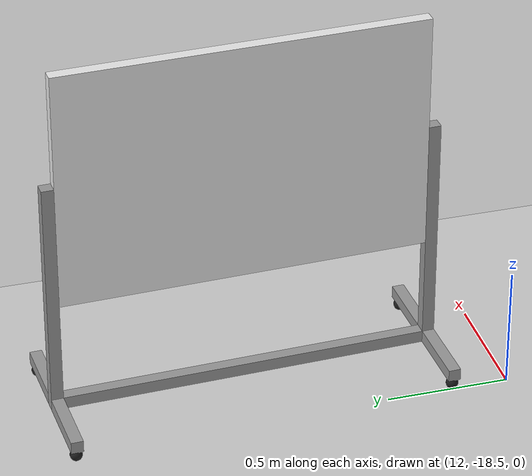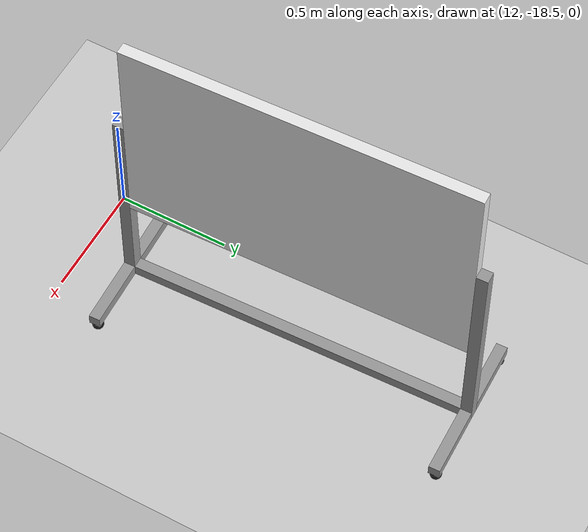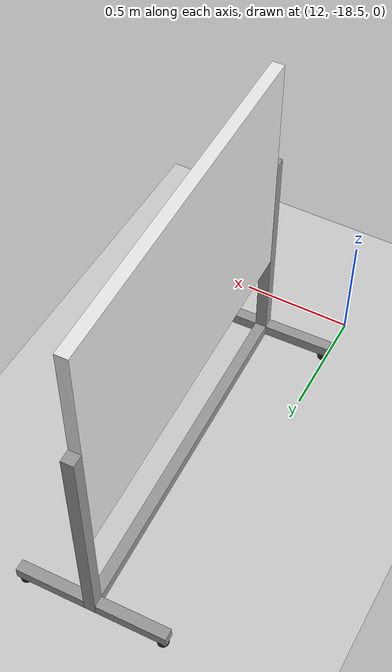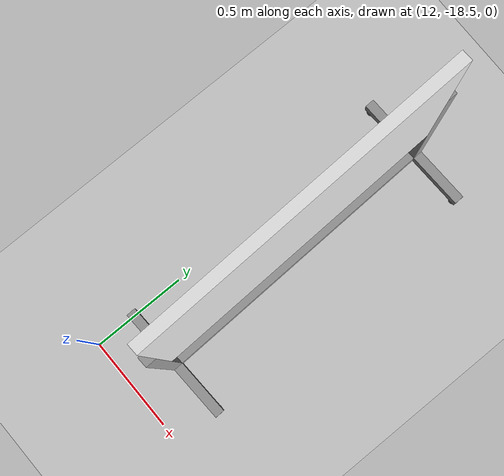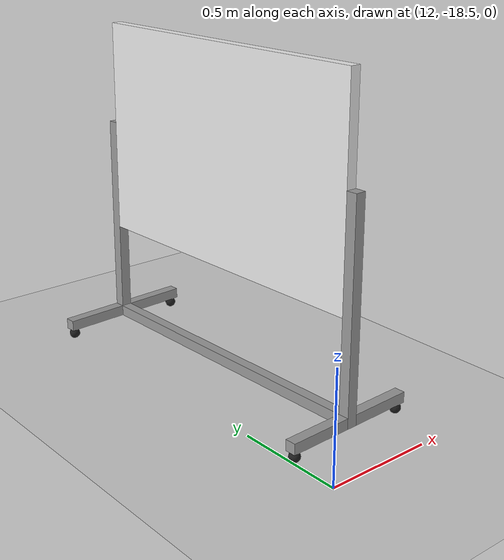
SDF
<sdf version="1.6">
 <world name="default">
  <model name="ground_plane">
   <static>1</static>
   <link name="link">
    <collision name="collision">
     <geometry><plane><normal>0 0 1</normal><size>100 100</size></plane></geometry>
     <surface><friction><ode><mu>100</mu><mu2>50</mu2></ode></friction></surface>
    </collision>
    <visual name="visual">
     <cast_shadows>0</cast_shadows>
     <geometry><plane><normal>0 0 1</normal><size>100 100</size></plane></geometry>
     <material>
      <script><uri>file://media/materials/scripts/gazebo.material</uri><name>Gazebo/Grey</name></script>
     </material>
    </visual>
   </link>
  </model>
  <model name="whiteboard_clone_clone_0">
   <link name="link_0">
    <pose>0 0 1.09583 0 -0 0</pose>
    <inertial>
     <mass>1</mass>
     <inertia>
      <ixx>0.166667</ixx>
      <ixy>0</ixy>
      <ixz>0</ixz>
      <iyy>0.166667</iyy>
      <iyz>0</iyz>
      <izz>0.166667</izz>
     </inertia>
    </inertial>
    <visual name="visual">
     <geometry><box><size>0.05 1.5 1</size></box></geometry>
     <material>
      <lighting>1</lighting>
      <script><uri>file://media/materials/scripts/gazebo.material</uri><name>Gazebo/White</name></script>
      <shader type="vertex"><normal_map>__default__</normal_map></shader>
     </material>
    </visual>
    <collision name="collision">
     <geometry><box><size>0.05 1.5 1</size></box></geometry>
     <surface>
      <friction>
       <ode><mu>1</mu><mu2>1</mu2><fdir1>0 0 0</fdir1><slip1>0</slip1><slip2>0</slip2></ode>
       <torsional>
        <coefficient>1</coefficient>
        <patch_radius>0</patch_radius>
        <surface_radius>0</surface_radius>
        <use_patch_radius>1</use_patch_radius>
        <ode><slip>0</slip></ode>
       </torsional>
      </friction>
      <bounce><restitution_coefficient>0</restitution_coefficient><threshold>1e+06</threshold></bounce>
      <contact>
       <collide_without_contact>0</collide_without_contact>
       <collide_without_contact_bitmask>1</collide_without_contact_bitmask>
       <collide_bitmask>1</collide_bitmask>
       <ode>
        <soft_cfm>0</soft_cfm>
        <soft_erp>0.2</soft_erp>
        <kp>1e+13</kp>
        <kd>1</kd>
        <max_vel>0.01</max_vel>
        <min_depth>0</min_depth>
       </ode>
       <bullet>
        <split_impulse>1</split_impulse>
        <split_impulse_penetration_threshold>-0.01</split_impulse_penetration_threshold>
        <soft_cfm>0</soft_cfm>
        <soft_erp>0.2</soft_erp>
        <kp>1e+13</kp>
        <kd>1</kd>
       </bullet>
      </contact>
     </surface>
    </collision>
   </link>
   <link name="link_1">
    <pose>0 0 0.145833 0 -0 0</pose>
    <inertial>
     <mass>1</mass>
     <inertia>
      <ixx>0.166667</ixx>
      <ixy>0</ixy>
      <ixz>0</ixz>
      <iyy>0.166667</iyy>
      <iyz>0</iyz>
      <izz>0.166667</izz>
     </inertia>
    </inertial>
    <visual name="visual">
     <geometry><box><size>0.05 1.5 0.05</size></box></geometry>
     <material>
      <lighting>1</lighting>
      <script><uri>file://media/materials/scripts/gazebo.material</uri><name>Gazebo/Grey</name></script>
      <ambient>0.3 0.3 0.3 1</ambient>
      <diffuse>0.7 0.7 0.7 1</diffuse>
      <specular>0.01 0.01 0.01 1</specular>
      <emissive>0 0 0 1</emissive>
      <shader type="vertex"><normal_map>__default__</normal_map></shader>
     </material>
    </visual>
    <collision name="collision">
     <geometry><box><size>0.05 1.5 0.05</size></box></geometry>
     <surface>
      <friction>
       <ode><mu>1</mu><mu2>1</mu2><fdir1>0 0 0</fdir1><slip1>0</slip1><slip2>0</slip2></ode>
       <torsional>
        <coefficient>1</coefficient>
        <patch_radius>0</patch_radius>
        <surface_radius>0</surface_radius>
        <use_patch_radius>1</use_patch_radius>
        <ode><slip>0</slip></ode>
       </torsional>
      </friction>
      <bounce><restitution_coefficient>0</restitution_coefficient><threshold>1e+06</threshold></bounce>
      <contact>
       <collide_without_contact>0</collide_without_contact>
       <collide_without_contact_bitmask>1</collide_without_contact_bitmask>
       <collide_bitmask>1</collide_bitmask>
       <ode>
        <soft_cfm>0</soft_cfm>
        <soft_erp>0.2</soft_erp>
        <kp>1e+13</kp>
        <kd>1</kd>
        <max_vel>0.01</max_vel>
        <min_depth>0</min_depth>
       </ode>
       <bullet>
        <split_impulse>1</split_impulse>
        <split_impulse_penetration_threshold>-0.01</split_impulse_penetration_threshold>
        <soft_cfm>0</soft_cfm>
        <soft_erp>0.2</soft_erp>
        <kp>1e+13</kp>
        <kd>1</kd>
       </bullet>
      </contact>
     </surface>
    </collision>
   </link>
   <link name="link_2">
    <pose>-0.175 -0.775 0.145833 0 -0 0</pose>
    <inertial>
     <mass>1</mass>
     <inertia>
      <ixx>0.166667</ixx>
      <ixy>0</ixy>
      <ixz>0</ixz>
      <iyy>0.166667</iyy>
      <iyz>0</iyz>
      <izz>0.166667</izz>
     </inertia>
    </inertial>
    <visual name="visual">
     <geometry><box><size>0.3 0.05 0.05</size></box></geometry>
     <material>
      <lighting>1</lighting>
      <script><uri>file://media/materials/scripts/gazebo.material</uri><name>Gazebo/Grey</name></script>
      <ambient>0.3 0.3 0.3 1</ambient>
      <diffuse>0.7 0.7 0.7 1</diffuse>
      <specular>0.01 0.01 0.01 1</specular>
      <emissive>0 0 0 1</emissive>
      <shader type="vertex"><normal_map>__default__</normal_map></shader>
     </material>
    </visual>
    <collision name="collision">
     <geometry><box><size>0.3 0.05 0.05</size></box></geometry>
     <surface>
      <friction>
       <ode><mu>1</mu><mu2>1</mu2><fdir1>0 0 0</fdir1><slip1>0</slip1><slip2>0</slip2></ode>
       <torsional>
        <coefficient>1</coefficient>
        <patch_radius>0</patch_radius>
        <surface_radius>0</surface_radius>
        <use_patch_radius>1</use_patch_radius>
        <ode><slip>0</slip></ode>
       </torsional>
      </friction>
      <bounce><restitution_coefficient>0</restitution_coefficient><threshold>1e+06</threshold></bounce>
      <contact>
       <collide_without_contact>0</collide_without_contact>
       <collide_without_contact_bitmask>1</collide_without_contact_bitmask>
       <collide_bitmask>1</collide_bitmask>
       <ode>
        <soft_cfm>0</soft_cfm>
        <soft_erp>0.2</soft_erp>
        <kp>1e+13</kp>
        <kd>1</kd>
        <max_vel>0.01</max_vel>
        <min_depth>0</min_depth>
       </ode>
       <bullet>
        <split_impulse>1</split_impulse>
        <split_impulse_penetration_threshold>-0.01</split_impulse_penetration_threshold>
        <soft_cfm>0</soft_cfm>
        <soft_erp>0.2</soft_erp>
        <kp>1e+13</kp>
        <kd>1</kd>
       </bullet>
      </contact>
     </surface>
    </collision>
   </link>
   <link name="link_2_clone">
    <pose>0.175 0.775 0.145833 0 -0 0</pose>
    <inertial>
     <mass>1</mass>
     <inertia>
      <ixx>0.166667</ixx>
      <ixy>0</ixy>
      <ixz>0</ixz>
      <iyy>0.166667</iyy>
      <iyz>0</iyz>
      <izz>0.166667</izz>
     </inertia>
    </inertial>
    <visual name="visual">
     <geometry><box><size>0.3 0.05 0.05</size></box></geometry>
     <material>
      <lighting>1</lighting>
      <script><uri>file://media/materials/scripts/gazebo.material</uri><name>Gazebo/Grey</name></script>
      <ambient>0.3 0.3 0.3 1</ambient>
      <diffuse>0.7 0.7 0.7 1</diffuse>
      <specular>0.01 0.01 0.01 1</specular>
      <emissive>0 0 0 1</emissive>
      <shader type="vertex"><normal_map>__default__</normal_map></shader>
     </material>
    </visual>
    <collision name="collision">
     <geometry><box><size>0.3 0.05 0.05</size></box></geometry>
     <surface>
      <friction>
       <ode><mu>1</mu><mu2>1</mu2><fdir1>0 0 0</fdir1><slip1>0</slip1><slip2>0</slip2></ode>
       <torsional>
        <coefficient>1</coefficient>
        <patch_radius>0</patch_radius>
        <surface_radius>0</surface_radius>
        <use_patch_radius>1</use_patch_radius>
        <ode><slip>0</slip></ode>
       </torsional>
      </friction>
      <bounce><restitution_coefficient>0</restitution_coefficient><threshold>1e+06</threshold></bounce>
      <contact>
       <collide_without_contact>0</collide_without_contact>
       <collide_without_contact_bitmask>1</collide_without_contact_bitmask>
       <collide_bitmask>1</collide_bitmask>
       <ode>
        <soft_cfm>0</soft_cfm>
        <soft_erp>0.2</soft_erp>
        <kp>1e+13</kp>
        <kd>1</kd>
        <max_vel>0.01</max_vel>
        <min_depth>0</min_depth>
       </ode>
       <bullet>
        <split_impulse>1</split_impulse>
        <split_impulse_penetration_threshold>-0.01</split_impulse_penetration_threshold>
        <soft_cfm>0</soft_cfm>
        <soft_erp>0.2</soft_erp>
        <kp>1e+13</kp>
        <kd>1</kd>
       </bullet>
      </contact>
     </surface>
    </collision>
   </link>
   <link name="link_2_clone_clone">
    <pose>0.175 -0.775 0.145833 0 -0 0</pose>
    <inertial>
     <mass>1</mass>
     <inertia>
      <ixx>0.166667</ixx>
      <ixy>0</ixy>
      <ixz>0</ixz>
      <iyy>0.166667</iyy>
      <iyz>0</iyz>
      <izz>0.166667</izz>
     </inertia>
    </inertial>
    <visual name="visual">
     <geometry><box><size>0.3 0.05 0.05</size></box></geometry>
     <material>
      <lighting>1</lighting>
      <script><uri>file://media/materials/scripts/gazebo.material</uri><name>Gazebo/Grey</name></script>
      <ambient>0.3 0.3 0.3 1</ambient>
      <diffuse>0.7 0.7 0.7 1</diffuse>
      <specular>0.01 0.01 0.01 1</specular>
      <emissive>0 0 0 1</emissive>
      <shader type="vertex"><normal_map>__default__</normal_map></shader>
     </material>
    </visual>
    <collision name="collision">
     <geometry><box><size>0.3 0.05 0.05</size></box></geometry>
     <surface>
      <friction>
       <ode><mu>1</mu><mu2>1</mu2><fdir1>0 0 0</fdir1><slip1>0</slip1><slip2>0</slip2></ode>
       <torsional>
        <coefficient>1</coefficient>
        <patch_radius>0</patch_radius>
        <surface_radius>0</surface_radius>
        <use_patch_radius>1</use_patch_radius>
        <ode><slip>0</slip></ode>
       </torsional>
      </friction>
      <bounce><restitution_coefficient>0</restitution_coefficient><threshold>1e+06</threshold></bounce>
      <contact>
       <collide_without_contact>0</collide_without_contact>
       <collide_without_contact_bitmask>1</collide_without_contact_bitmask>
       <collide_bitmask>1</collide_bitmask>
       <ode>
        <soft_cfm>0</soft_cfm>
        <soft_erp>0.2</soft_erp>
        <kp>1e+13</kp>
        <kd>1</kd>
        <max_vel>0.01</max_vel>
        <min_depth>0</min_depth>
       </ode>
       <bullet>
        <split_impulse>1</split_impulse>
        <split_impulse_penetration_threshold>-0.01</split_impulse_penetration_threshold>
        <soft_cfm>0</soft_cfm>
        <soft_erp>0.2</soft_erp>
        <kp>1e+13</kp>
        <kd>1</kd>
       </bullet>
      </contact>
     </surface>
    </collision>
   </link>
   <link name="link_2_clone_clone_clone">
    <pose>-0.175 0.775 0.145833 0 -0 0</pose>
    <inertial>
     <mass>1</mass>
     <inertia>
      <ixx>0.166667</ixx>
      <ixy>0</ixy>
      <ixz>0</ixz>
      <iyy>0.166667</iyy>
      <iyz>0</iyz>
      <izz>0.166667</izz>
     </inertia>
    </inertial>
    <visual name="visual">
     <geometry><box><size>0.3 0.05 0.05</size></box></geometry>
     <material>
      <lighting>1</lighting>
      <script><uri>file://media/materials/scripts/gazebo.material</uri><name>Gazebo/Grey</name></script>
      <ambient>0.3 0.3 0.3 1</ambient>
      <diffuse>0.7 0.7 0.7 1</diffuse>
      <specular>0.01 0.01 0.01 1</specular>
      <emissive>0 0 0 1</emissive>
      <shader type="vertex"><normal_map>__default__</normal_map></shader>
     </material>
    </visual>
    <collision name="collision">
     <geometry><box><size>0.3 0.05 0.05</size></box></geometry>
     <surface>
      <friction>
       <ode><mu>1</mu><mu2>1</mu2><fdir1>0 0 0</fdir1><slip1>0</slip1><slip2>0</slip2></ode>
       <torsional>
        <coefficient>1</coefficient>
        <patch_radius>0</patch_radius>
        <surface_radius>0</surface_radius>
        <use_patch_radius>1</use_patch_radius>
        <ode><slip>0</slip></ode>
       </torsional>
      </friction>
      <bounce><restitution_coefficient>0</restitution_coefficient><threshold>1e+06</threshold></bounce>
      <contact>
       <collide_without_contact>0</collide_without_contact>
       <collide_without_contact_bitmask>1</collide_without_contact_bitmask>
       <collide_bitmask>1</collide_bitmask>
       <ode>
        <soft_cfm>0</soft_cfm>
        <soft_erp>0.2</soft_erp>
        <kp>1e+13</kp>
        <kd>1</kd>
        <max_vel>0.01</max_vel>
        <min_depth>0</min_depth>
       </ode>
       <bullet>
        <split_impulse>1</split_impulse>
        <split_impulse_penetration_threshold>-0.01</split_impulse_penetration_threshold>
        <soft_cfm>0</soft_cfm>
        <soft_erp>0.2</soft_erp>
        <kp>1e+13</kp>
        <kd>1</kd>
       </bullet>
      </contact>
     </surface>
    </collision>
   </link>
   <link name="link_3">
    <pose>0 -0.775 0.620833 0 -0 0</pose>
    <inertial>
     <mass>1</mass>
     <inertia>
      <ixx>0.166667</ixx>
      <ixy>0</ixy>
      <ixz>0</ixz>
      <iyy>0.166667</iyy>
      <iyz>0</iyz>
      <izz>0.166667</izz>
     </inertia>
    </inertial>
    <visual name="visual">
     <geometry><box><size>0.05 0.05 1</size></box></geometry>
     <material>
      <lighting>1</lighting>
      <script><uri>file://media/materials/scripts/gazebo.material</uri><name>Gazebo/Grey</name></script>
      <ambient>0.3 0.3 0.3 1</ambient>
      <diffuse>0.7 0.7 0.7 1</diffuse>
      <specular>0.01 0.01 0.01 1</specular>
      <emissive>0 0 0 1</emissive>
      <shader type="vertex"><normal_map>__default__</normal_map></shader>
     </material>
    </visual>
    <collision name="collision">
     <geometry><box><size>0.05 0.05 1</size></box></geometry>
     <surface>
      <friction>
       <ode><mu>1</mu><mu2>1</mu2><fdir1>0 0 0</fdir1><slip1>0</slip1><slip2>0</slip2></ode>
       <torsional>
        <coefficient>1</coefficient>
        <patch_radius>0</patch_radius>
        <surface_radius>0</surface_radius>
        <use_patch_radius>1</use_patch_radius>
        <ode><slip>0</slip></ode>
       </torsional>
      </friction>
      <bounce><restitution_coefficient>0</restitution_coefficient><threshold>1e+06</threshold></bounce>
      <contact>
       <collide_without_contact>0</collide_without_contact>
       <collide_without_contact_bitmask>1</collide_without_contact_bitmask>
       <collide_bitmask>1</collide_bitmask>
       <ode>
        <soft_cfm>0</soft_cfm>
        <soft_erp>0.2</soft_erp>
        <kp>1e+13</kp>
        <kd>1</kd>
        <max_vel>0.01</max_vel>
        <min_depth>0</min_depth>
       </ode>
       <bullet>
        <split_impulse>1</split_impulse>
        <split_impulse_penetration_threshold>-0.01</split_impulse_penetration_threshold>
        <soft_cfm>0</soft_cfm>
        <soft_erp>0.2</soft_erp>
        <kp>1e+13</kp>
        <kd>1</kd>
       </bullet>
      </contact>
     </surface>
    </collision>
   </link>
   <link name="link_3_clone">
    <pose>0 0.775 0.620833 0 -0 0</pose>
    <inertial>
     <mass>1</mass>
     <inertia>
      <ixx>0.166667</ixx>
      <ixy>0</ixy>
      <ixz>0</ixz>
      <iyy>0.166667</iyy>
      <iyz>0</iyz>
      <izz>0.166667</izz>
     </inertia>
    </inertial>
    <visual name="visual">
     <geometry><box><size>0.05 0.05 1</size></box></geometry>
     <material>
      <lighting>1</lighting>
      <script><uri>file://media/materials/scripts/gazebo.material</uri><name>Gazebo/Grey</name></script>
      <ambient>0.3 0.3 0.3 1</ambient>
      <diffuse>0.7 0.7 0.7 1</diffuse>
      <specular>0.01 0.01 0.01 1</specular>
      <emissive>0 0 0 1</emissive>
      <shader type="vertex"><normal_map>__default__</normal_map></shader>
     </material>
    </visual>
    <collision name="collision">
     <geometry><box><size>0.05 0.05 1</size></box></geometry>
     <surface>
      <friction>
       <ode><mu>1</mu><mu2>1</mu2><fdir1>0 0 0</fdir1><slip1>0</slip1><slip2>0</slip2></ode>
       <torsional>
        <coefficient>1</coefficient>
        <patch_radius>0</patch_radius>
        <surface_radius>0</surface_radius>
        <use_patch_radius>1</use_patch_radius>
        <ode><slip>0</slip></ode>
       </torsional>
      </friction>
      <bounce><restitution_coefficient>0</restitution_coefficient><threshold>1e+06</threshold></bounce>
      <contact>
       <collide_without_contact>0</collide_without_contact>
       <collide_without_contact_bitmask>1</collide_without_contact_bitmask>
       <collide_bitmask>1</collide_bitmask>
       <ode>
        <soft_cfm>0</soft_cfm>
        <soft_erp>0.2</soft_erp>
        <kp>1e+13</kp>
        <kd>1</kd>
        <max_vel>0.01</max_vel>
        <min_depth>0</min_depth>
       </ode>
       <bullet>
        <split_impulse>1</split_impulse>
        <split_impulse_penetration_threshold>-0.01</split_impulse_penetration_threshold>
        <soft_cfm>0</soft_cfm>
        <soft_erp>0.2</soft_erp>
        <kp>1e+13</kp>
        <kd>1</kd>
       </bullet>
      </contact>
     </surface>
    </collision>
   </link>
   <link name="link_4">
    <pose>-0.3 -0.775 0.095833 0 -0 0</pose>
    <inertial>
     <mass>1</mass>
     <inertia><ixx>0.1</ixx><ixy>0</ixy><ixz>0</ixz><iyy>0.1</iyy><iyz>0</iyz><izz>0.1</izz></inertia>
    </inertial>
    <visual name="visual">
     <geometry><sphere><radius>0.025</radius></sphere></geometry>
     <material>
      <lighting>1</lighting>
      <script><uri>file://media/materials/scripts/gazebo.material</uri><name>Gazebo/Black</name></script>
      <shader type="vertex"><normal_map>__default__</normal_map></shader>
     </material>
    </visual>
    <collision name="collision">
     <geometry><sphere><radius>0.025</radius></sphere></geometry>
     <surface>
      <friction>
       <ode><mu>1</mu><mu2>1</mu2><fdir1>0 0 0</fdir1><slip1>0</slip1><slip2>0</slip2></ode>
       <torsional>
        <coefficient>1</coefficient>
        <patch_radius>0</patch_radius>
        <surface_radius>0</surface_radius>
        <use_patch_radius>1</use_patch_radius>
        <ode><slip>0</slip></ode>
       </torsional>
      </friction>
      <bounce><restitution_coefficient>0</restitution_coefficient><threshold>1e+06</threshold></bounce>
      <contact>
       <collide_without_contact>0</collide_without_contact>
       <collide_without_contact_bitmask>1</collide_without_contact_bitmask>
       <collide_bitmask>1</collide_bitmask>
       <ode>
        <soft_cfm>0</soft_cfm>
        <soft_erp>0.2</soft_erp>
        <kp>1e+13</kp>
        <kd>1</kd>
        <max_vel>0.01</max_vel>
        <min_depth>0</min_depth>
       </ode>
       <bullet>
        <split_impulse>1</split_impulse>
        <split_impulse_penetration_threshold>-0.01</split_impulse_penetration_threshold>
        <soft_cfm>0</soft_cfm>
        <soft_erp>0.2</soft_erp>
        <kp>1e+13</kp>
        <kd>1</kd>
       </bullet>
      </contact>
     </surface>
    </collision>
   </link>
   <link name="link_4_clone">
    <pose>0.3 0.775 0.095833 0 -0 0</pose>
    <inertial>
     <mass>1</mass>
     <inertia><ixx>0.1</ixx><ixy>0</ixy><ixz>0</ixz><iyy>0.1</iyy><iyz>0</iyz><izz>0.1</izz></inertia>
    </inertial>
    <visual name="visual">
     <geometry><sphere><radius>0.025</radius></sphere></geometry>
     <material>
      <lighting>1</lighting>
      <script><uri>file://media/materials/scripts/gazebo.material</uri><name>Gazebo/Black</name></script>
      <shader type="vertex"><normal_map>__default__</normal_map></shader>
     </material>
    </visual>
    <collision name="collision">
     <geometry><sphere><radius>0.025</radius></sphere></geometry>
     <surface>
      <friction>
       <ode><mu>1</mu><mu2>1</mu2><fdir1>0 0 0</fdir1><slip1>0</slip1><slip2>0</slip2></ode>
       <torsional>
        <coefficient>1</coefficient>
        <patch_radius>0</patch_radius>
        <surface_radius>0</surface_radius>
        <use_patch_radius>1</use_patch_radius>
        <ode><slip>0</slip></ode>
       </torsional>
      </friction>
      <bounce><restitution_coefficient>0</restitution_coefficient><threshold>1e+06</threshold></bounce>
      <contact>
       <collide_without_contact>0</collide_without_contact>
       <collide_without_contact_bitmask>1</collide_without_contact_bitmask>
       <collide_bitmask>1</collide_bitmask>
       <ode>
        <soft_cfm>0</soft_cfm>
        <soft_erp>0.2</soft_erp>
        <kp>1e+13</kp>
        <kd>1</kd>
        <max_vel>0.01</max_vel>
        <min_depth>0</min_depth>
       </ode>
       <bullet>
        <split_impulse>1</split_impulse>
        <split_impulse_penetration_threshold>-0.01</split_impulse_penetration_threshold>
        <soft_cfm>0</soft_cfm>
        <soft_erp>0.2</soft_erp>
        <kp>1e+13</kp>
        <kd>1</kd>
       </bullet>
      </contact>
     </surface>
    </collision>
   </link>
   <link name="link_4_clone_clone">
    <pose>-0.3 0.775 0.095833 0 -0 0</pose>
    <inertial>
     <mass>1</mass>
     <inertia><ixx>0.1</ixx><ixy>0</ixy><ixz>0</ixz><iyy>0.1</iyy><iyz>0</iyz><izz>0.1</izz></inertia>
    </inertial>
    <visual name="visual">
     <geometry><sphere><radius>0.025</radius></sphere></geometry>
     <material>
      <lighting>1</lighting>
      <script><uri>file://media/materials/scripts/gazebo.material</uri><name>Gazebo/Black</name></script>
      <shader type="vertex"><normal_map>__default__</normal_map></shader>
     </material>
    </visual>
    <collision name="collision">
     <geometry><sphere><radius>0.025</radius></sphere></geometry>
     <surface>
      <friction>
       <ode><mu>1</mu><mu2>1</mu2><fdir1>0 0 0</fdir1><slip1>0</slip1><slip2>0</slip2></ode>
       <torsional>
        <coefficient>1</coefficient>
        <patch_radius>0</patch_radius>
        <surface_radius>0</surface_radius>
        <use_patch_radius>1</use_patch_radius>
        <ode><slip>0</slip></ode>
       </torsional>
      </friction>
      <bounce><restitution_coefficient>0</restitution_coefficient><threshold>1e+06</threshold></bounce>
      <contact>
       <collide_without_contact>0</collide_without_contact>
       <collide_without_contact_bitmask>1</collide_without_contact_bitmask>
       <collide_bitmask>1</collide_bitmask>
       <ode>
        <soft_cfm>0</soft_cfm>
        <soft_erp>0.2</soft_erp>
        <kp>1e+13</kp>
        <kd>1</kd>
        <max_vel>0.01</max_vel>
        <min_depth>0</min_depth>
       </ode>
       <bullet>
        <split_impulse>1</split_impulse>
        <split_impulse_penetration_threshold>-0.01</split_impulse_penetration_threshold>
        <soft_cfm>0</soft_cfm>
        <soft_erp>0.2</soft_erp>
        <kp>1e+13</kp>
        <kd>1</kd>
       </bullet>
      </contact>
     </surface>
    </collision>
   </link>
   <link name="link_4_clone_clone_clone">
    <pose>0.3 -0.775 0.095833 0 -0 0</pose>
    <inertial>
     <mass>1</mass>
     <inertia><ixx>0.1</ixx><ixy>0</ixy><ixz>0</ixz><iyy>0.1</iyy><iyz>0</iyz><izz>0.1</izz></inertia>
    </inertial>
    <visual name="visual">
     <geometry><sphere><radius>0.025</radius></sphere></geometry>
     <material>
      <lighting>1</lighting>
      <script><uri>file://media/materials/scripts/gazebo.material</uri><name>Gazebo/Black</name></script>
      <shader type="vertex"><normal_map>__default__</normal_map></shader>
     </material>
    </visual>
    <collision name="collision">
     <geometry><sphere><radius>0.025</radius></sphere></geometry>
     <surface>
      <friction>
       <ode><mu>1</mu><mu2>1</mu2><fdir1>0 0 0</fdir1><slip1>0</slip1><slip2>0</slip2></ode>
       <torsional>
        <coefficient>1</coefficient>
        <patch_radius>0</patch_radius>
        <surface_radius>0</surface_radius>
        <use_patch_radius>1</use_patch_radius>
        <ode><slip>0</slip></ode>
       </torsional>
      </friction>
      <bounce><restitution_coefficient>0</restitution_coefficient><threshold>1e+06</threshold></bounce>
      <contact>
       <collide_without_contact>0</collide_without_contact>
       <collide_without_contact_bitmask>1</collide_without_contact_bitmask>
       <collide_bitmask>1</collide_bitmask>
       <ode>
        <soft_cfm>0</soft_cfm>
        <soft_erp>0.2</soft_erp>
        <kp>1e+13</kp>
        <kd>1</kd>
        <max_vel>0.01</max_vel>
        <min_depth>0</min_depth>
       </ode>
       <bullet>
        <split_impulse>1</split_impulse>
        <split_impulse_penetration_threshold>-0.01</split_impulse_penetration_threshold>
        <soft_cfm>0</soft_cfm>
        <soft_erp>0.2</soft_erp>
        <kp>1e+13</kp>
        <kd>1</kd>
       </bullet>
      </contact>
     </surface>
    </collision>
   </link>
   <joint name="link_1_JOINT_0" type="fixed">
    <parent>link_1</parent>
    <child>link_3</child>
    <physics>
     <ode><limit><cfm>0</cfm><erp>0.2</erp></limit><suspension><cfm>0</cfm><erp>0.2</erp></suspension></ode>
    </physics>
   </joint>
   <joint name="link_1_JOINT_3" type="fixed">
    <parent>link_1</parent>
    <child>link_3_clone</child>
    <physics>
     <ode><limit><cfm>0</cfm><erp>0.2</erp></limit><suspension><cfm>0</cfm><erp>0.2</erp></suspension></ode>
    </physics>
   </joint>
   <joint name="link_2_JOINT_12" type="ball">
    <parent>link_2</parent>
    <child>link_4</child>
    <physics>
     <ode><limit><cfm>0</cfm><erp>0.2</erp></limit><suspension><cfm>0</cfm><erp>0.2</erp></suspension></ode>
    </physics>
   </joint>
   <joint name="link_2_clone_JOINT_10" type="ball">
    <parent>link_2_clone</parent>
    <child>link_4_clone</child>
    <physics>
     <ode><limit><cfm>0</cfm><erp>0.2</erp></limit><suspension><cfm>0</cfm><erp>0.2</erp></suspension></ode>
    </physics>
   </joint>
   <joint name="link_2_clone_clone_JOINT_9" type="ball">
    <parent>link_2_clone_clone</parent>
    <child>link_4_clone_clone_clone</child>
    <physics>
     <ode><limit><cfm>0</cfm><erp>0.2</erp></limit><suspension><cfm>0</cfm><erp>0.2</erp></suspension></ode>
    </physics>
   </joint>
   <joint name="link_2_clone_clone_clone_JOINT_11" type="ball">
    <parent>link_2_clone_clone_clone</parent>
    <child>link_4_clone_clone</child>
    <physics>
     <ode><limit><cfm>0</cfm><erp>0.2</erp></limit><suspension><cfm>0</cfm><erp>0.2</erp></suspension></ode>
    </physics>
   </joint>
   <joint name="link_3_JOINT_1" type="fixed">
    <parent>link_3</parent>
    <child>link_2_clone_clone</child>
    <physics>
     <ode><limit><cfm>0</cfm><erp>0.2</erp></limit><suspension><cfm>0</cfm><erp>0.2</erp></suspension></ode>
    </physics>
   </joint>
   <joint name="link_3_JOINT_2" type="fixed">
    <parent>link_3</parent>
    <child>link_2</child>
    <physics>
     <ode><limit><cfm>0</cfm><erp>0.2</erp></limit><suspension><cfm>0</cfm><erp>0.2</erp></suspension></ode>
    </physics>
   </joint>
   <joint name="link_3_JOINT_6" type="fixed">
    <parent>link_3</parent>
    <child>link_0</child>
    <physics>
     <ode><limit><cfm>0</cfm><erp>0.2</erp></limit><suspension><cfm>0</cfm><erp>0.2</erp></suspension></ode>
    </physics>
   </joint>
   <joint name="link_3_clone_JOINT_4" type="fixed">
    <parent>link_3_clone</parent>
    <child>link_2_clone</child>
    <physics>
     <ode><limit><cfm>0</cfm><erp>0.2</erp></limit><suspension><cfm>0</cfm><erp>0.2</erp></suspension></ode>
    </physics>
   </joint>
   <joint name="link_3_clone_JOINT_5" type="fixed">
    <parent>link_3_clone</parent>
    <child>link_2_clone_clone_clone</child>
    <physics>
     <ode><limit><cfm>0</cfm><erp>0.2</erp></limit><suspension><cfm>0</cfm><erp>0.2</erp></suspension></ode>
    </physics>
   </joint>
   <joint name="link_3_clone_JOINT_7" type="fixed">
    <parent>link_3_clone</parent>
    <child>link_0</child>
    <physics>
     <ode><limit><cfm>0</cfm><erp>0.2</erp></limit><suspension><cfm>0</cfm><erp>0.2</erp></suspension></ode>
    </physics>
   </joint>
   <static>0</static>
   <pose>12.2843 -17.4865 -0.070833 0 -0 0.035524</pose>
  </model>
 </world>
</sdf>
